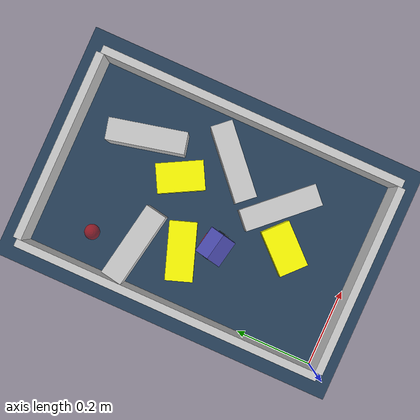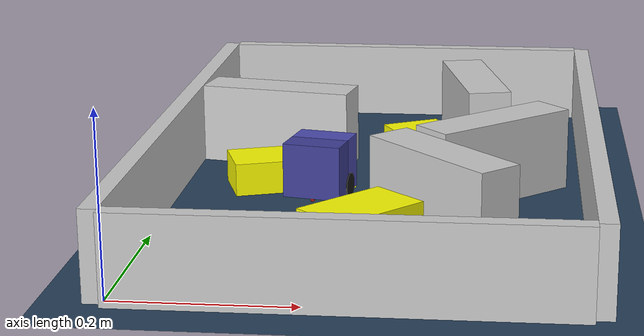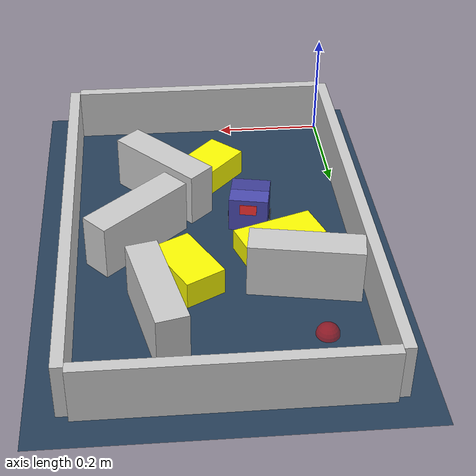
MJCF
<?xml version='1.0' encoding='utf-8'?>
<mujoco model="real_buildable">
  <compiler angle="degree" />
  <option timestep="0.002" integrator="implicitfast" iterations="100" cone="elliptic" />
  <default>
    <geom density="1" />
  </default>
  <asset>
    <texture builtin="gradient" height="3072" rgb1="0.3 0.5 0.7" rgb2="0 0 0" type="skybox" width="512" />
    <texture builtin="checker" height="300" mark="edge" markrgb="0.8 0.8 0.8" name="groundplane" rgb1="0.2 0.3 0.4" rgb2="0.1 0.2 0.3" type="2d" width="300" />
    <material name="groundplane" reflectance="0.2" texrepeat="5 5" texture="groundplane" texuniform="true" />
  </asset>
  <worldbody>
    <light dir="0 0 -1" directional="true" pos="0 0 1.5" />
    <geom name="floor" type="plane" condim="4" friction="0.5 0.005 0.001" material="groundplane" size="0 0 0.05" />
    <body name="walls">
      <geom name="wall_boundary_left" type="box" condim="4" friction="1.0 0.005 0.0001" rgba="0.8 0.8 0.8 1" pos="-0.010000 0.387500 0.050000" euler="0 0 0.000000" size="0.010000 0.397500 0.050000" />
      <geom name="wall_boundary_right" type="box" condim="4" friction="1.0 0.005 0.0001" rgba="0.8 0.8 0.8 1" pos="0.500000 0.387500 0.050000" euler="0 0 0.000000" size="0.010000 0.397500 0.050000" />
      <geom name="wall_boundary_bottom" type="box" condim="4" friction="1.0 0.005 0.0001" rgba="0.8 0.8 0.8 1" pos="0.245000 -0.010000 0.050000" euler="0 0 0.000000" size="0.245000 0.010000 0.050000" />
      <geom name="wall_boundary_top" type="box" condim="4" friction="1.0 0.005 0.0001" rgba="0.8 0.8 0.8 1" pos="0.245000 0.785000 0.050000" euler="0 0 0.000000" size="0.245000 0.010000 0.050000" />
      <geom name="wall_inner_1" type="box" condim="4" friction="1.0 0.005 0.0001" rgba="0.8 0.8 0.8 1" pos="0.327516 0.235920 0.050000" euler="0 0 -46.905885" size="0.097500 0.027500 0.050000" />
      <geom name="wall_inner_2" type="box" condim="4" friction="1.0 0.005 0.0001" rgba="0.8 0.8 0.8 1" pos="0.382140 0.384545 0.050000" euler="0 0 41.999873" size="0.097500 0.027500 0.050000" />
      <geom name="wall_inner_3" type="box" condim="4" friction="1.0 0.005 0.0001" rgba="0.8 0.8 0.8 1" pos="0.101000 0.523000 0.050000" euler="0 0 169.900000" size="0.097500 0.027500 0.050000" />
      <geom name="wall_inner_4" type="box" condim="4" friction="1.0 0.005 0.0001" rgba="0.8 0.8 0.8 1" pos="0.353000 0.602000 0.050000" euler="0 0 103.100000" size="0.097500 0.027500 0.050000" />
    </body>
    <body name="car" pos="0.17598032229594748 0.34055070637477197 0.01" quat="0.7713947968148247 0 0 0.63635687113994088">
      <freejoint name="car_freejoint" />
      <inertial pos="0 0 0.0375" mass="0.35" diaginertia="0.000266 0.000266 0.000286" />
      <geom name="front_chassis_collision" type="box" pos="0.0175 0 0.0375" size="0.0175 0.035 0.0325" rgba="0.3 0.3 0.7 1" />
      <geom name="rear_chassis_collision" type="box" pos="-0.0175 0 0.0375" size="0.0175 0.035 0.0325" rgba="0.25 0.25 0.6 1" />
      <geom name="front_marker" type="box" pos="0.034 0 0.0505" size="0.002 0.015 0.01" rgba="1 0.2 0.2 1" contype="0" conaffinity="0" />
      <body name="rear_support_body" pos="-0.03 0 0.0025">
        <joint name="rear_caster_joint" type="ball" damping="0.0001" />
        <inertial pos="0 0 0" mass="0.025" diaginertia="0.000001 0.000001 0.000001" />
        <geom name="rear_support" type="sphere" pos="0 0 0" size="0.0025" friction="0 0 0" rgba="0.7 0.1 0.1 1" />
      </body>
      <body name="front_support_body" pos="0.03 0 0.0025">
        <joint name="front_caster_joint" type="ball" damping="0.0001" />
        <inertial pos="0 0 0" mass="0.025" diaginertia="0.000001 0.000001 0.000001" />
        <geom name="front_support" type="sphere" pos="0 0 0" size="0.0025" friction="0 0 0" rgba="0.1 0.7 0.1 1" />
      </body>
      <body name="left_wheel" pos="0 0.0375 0.015">
        <inertial pos="0 0 0" mass="0.05" diaginertia="0.000003 0.000006 0.000003" />
        <joint name="left_wheel_joint" type="hinge" axis="0 1 0" damping="0.01" armature="0.0001" />
        <geom name="left_wheel_collision" type="cylinder" size="0.015 0.0005" euler="90 0 0" rgba="0.1 0.1 0.1 1" />
      </body>
      <body name="right_wheel" pos="0 -0.0375 0.015">
        <inertial pos="0 0 0" mass="0.05" diaginertia="0.000003 0.000006 0.000003" />
        <joint name="right_wheel_joint" type="hinge" axis="0 1 0" damping="0.01" armature="0.0001" />
        <geom name="right_wheel_collision" type="cylinder" size="0.015 0.0005" euler="90 0 0" rgba="0.1 0.1 0.1 1" />
      </body>
    </body>
    <body name="obstacle_0_movable">
      <geom name="obstacle_0_movable" condim="4" pos="0.12955807127887359 0.4132583279466614 0.02" friction="1 0.005 0.0001" rgba="1 1 0 1" size="0.035000 0.075000 0.020000" type="box" mass="0.1" quat="0.57885111739519757 0 0 0.81543324919353832" />
      <joint type="free" />
    </body>
    <body name="obstacle_1_movable">
      <geom name="obstacle_1_movable" condim="4" pos="0.29799999999999993 0.48999999999999966 0.025000000000000001" friction="1 0.005 0.0001" rgba="1 1 0 1" size="0.037500 0.060000 0.025000" type="box" mass="0.1" quat="0.96965905180871748 0 0 0.24446129191636662" />
      <joint type="free" />
    </body>
    <body name="obstacle_2_movable">
      <geom name="obstacle_2_movable" condim="4" pos="0.24069200000000002 0.18164199999999989 0.025000000000000001" friction="1 0.005 0.0001" rgba="1 1 0 1" size="0.037500 0.060000 0.025000" type="box" mass="0.1" quat="0.36544318327931075 0 0 0.93083364775596944" />
      <joint type="free" />
    </body>
    <site name="goal" type="sphere" pos="0.080000 0.640000 0.0" size="0.02" rgba="1 0 0 0.5" />
  </worldbody>
  <actuator>
    <velocity name="left_wheel_drive" joint="left_wheel_joint" ctrlrange="-25 25" kv="0.75" forcerange="-0.5 0.5" />
    <velocity name="right_wheel_drive" joint="right_wheel_joint" ctrlrange="-25 25" kv="0.75" forcerange="-0.5 0.5" />
  </actuator>
</mujoco>
